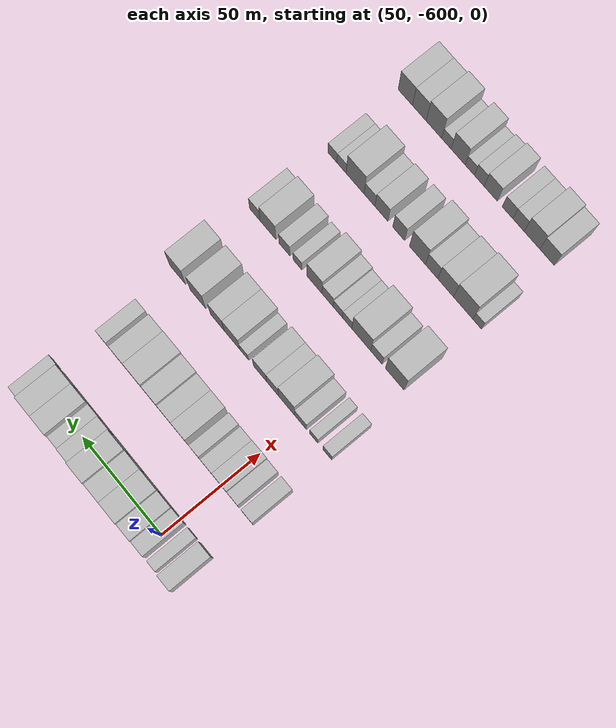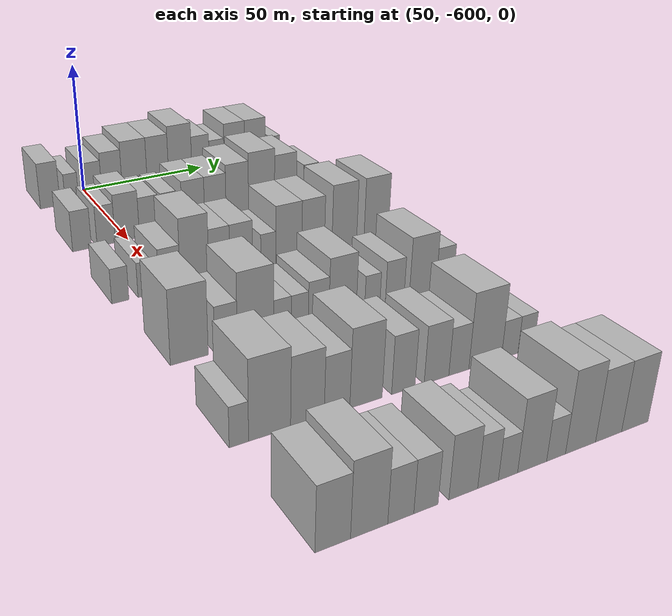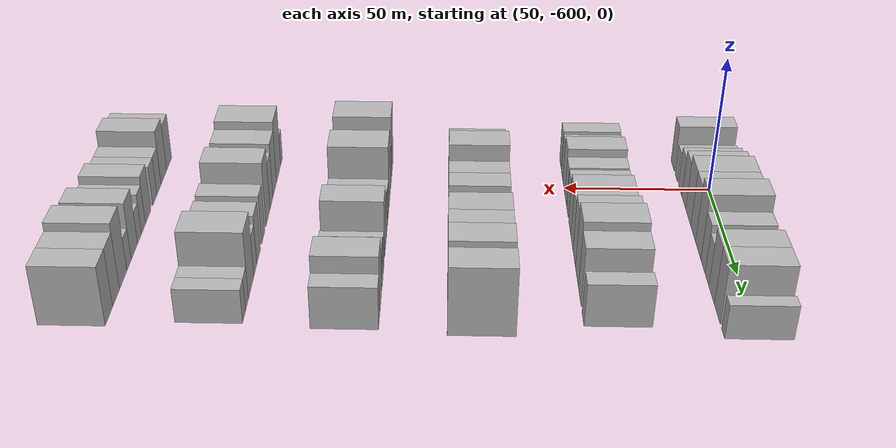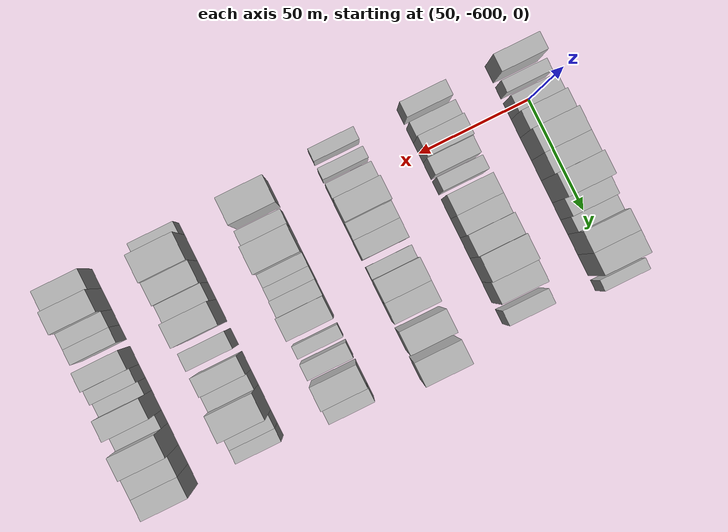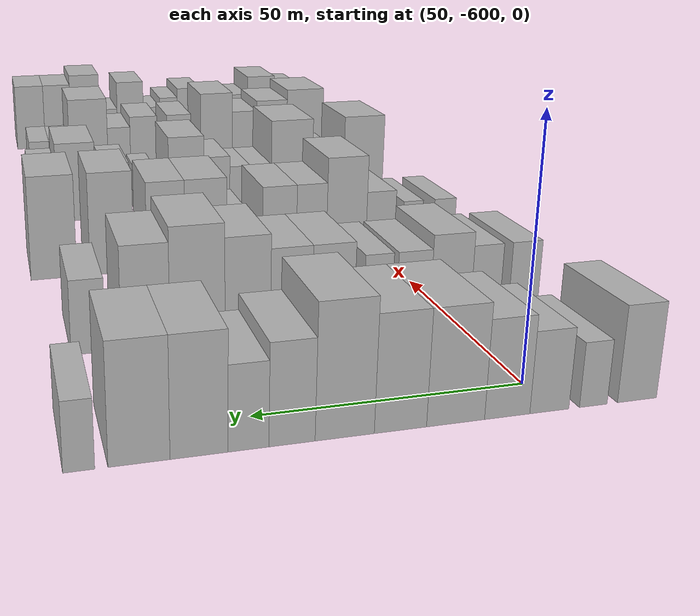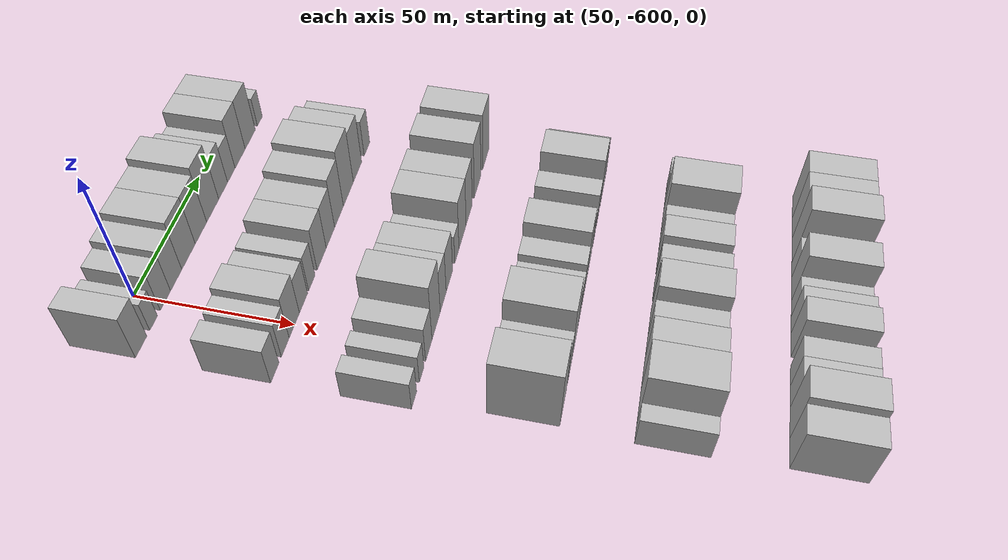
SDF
<sdf version="1.6">
 <world name="default">
  <model name="building_1">
   <static>1</static>
   <pose>50.0000 -616.2092 0 0.000000 0.000000 0.000000</pose>
   <link name="link">
    <pose>0 0 9.00 0 0 0</pose>
    <collision name="collision"><geometry><box><size>20.0000 7.5817 18.0000</size></box></geometry></collision>
    <visual name="visual">
     <cast_shadows>0</cast_shadows>
     <geometry><box><size>20.0000 7.5817 18.0000</size></box></geometry>
     <material>
      <script>
       <uri>model://HANNAS_wall/materials/scripts</uri>
       <uri>model://HANNAS_wall/materials/textures</uri>
       <name>vrc/HANNAS_wall</name>
      </script>
     </material>
    </visual>
   </link>
  </model>
  <model name="building_2">
   <static>1</static>
   <pose>50.0000 -607.7861 0 0.000000 0.000000 0.000000</pose>
   <link name="link">
    <pose>0 0 6.00 0 0 0</pose>
    <collision name="collision"><geometry><box><size>20.0000 5.2644 12.0000</size></box></geometry></collision>
    <visual name="visual">
     <cast_shadows>0</cast_shadows>
     <geometry><box><size>20.0000 5.2644 12.0000</size></box></geometry>
     <material>
      <script>
       <uri>model://HANNAS_wall/materials/scripts</uri>
       <uri>model://HANNAS_wall/materials/textures</uri>
       <name>vrc/HANNAS_wall</name>
      </script>
     </material>
    </visual>
   </link>
  </model>
  <model name="building_3">
   <static>1</static>
   <pose>50.0000 -599.5087 0 0.000000 0.000000 0.000000</pose>
   <link name="link">
    <pose>0 0 7.50 0 0 0</pose>
    <collision name="collision"><geometry><box><size>20.0000 7.2904 15.0000</size></box></geometry></collision>
    <visual name="visual">
     <cast_shadows>0</cast_shadows>
     <geometry><box><size>20.0000 7.2904 15.0000</size></box></geometry>
     <material>
      <script>
       <uri>model://HANNAS_wall/materials/scripts</uri>
       <uri>model://HANNAS_wall/materials/textures</uri>
       <name>vrc/HANNAS_wall</name>
      </script>
     </material>
    </visual>
   </link>
  </model>
  <model name="building_4">
   <static>1</static>
   <pose>50.0000 -591.7277 0 0.000000 0.000000 0.000000</pose>
   <link name="link">
    <pose>0 0 9.00 0 0 0</pose>
    <collision name="collision"><geometry><box><size>20.0000 8.2717 18.0000</size></box></geometry></collision>
    <visual name="visual">
     <cast_shadows>0</cast_shadows>
     <geometry><box><size>20.0000 8.2717 18.0000</size></box></geometry>
     <material>
      <script>
       <uri>model://HANNAS_wall/materials/scripts</uri>
       <uri>model://HANNAS_wall/materials/textures</uri>
       <name>vrc/HANNAS_wall</name>
      </script>
     </material>
    </visual>
   </link>
  </model>
  <model name="building_5">
   <static>1</static>
   <pose>50.0000 -582.4163 0 0.000000 0.000000 0.000000</pose>
   <link name="link">
    <pose>0 0 10.50 0 0 0</pose>
    <collision name="collision"><geometry><box><size>20.0000 10.3511 21.0000</size></box></geometry></collision>
    <visual name="visual">
     <cast_shadows>0</cast_shadows>
     <geometry><box><size>20.0000 10.3511 21.0000</size></box></geometry>
     <material>
      <script>
       <uri>model://HANNAS_wall/materials/scripts</uri>
       <uri>model://HANNAS_wall/materials/textures</uri>
       <name>vrc/HANNAS_wall</name>
      </script>
     </material>
    </visual>
   </link>
  </model>
  <model name="building_6">
   <static>1</static>
   <pose>50.0000 -572.6963 0 0.000000 0.000000 0.000000</pose>
   <link name="link">
    <pose>0 0 10.50 0 0 0</pose>
    <collision name="collision"><geometry><box><size>20.0000 9.0889 21.0000</size></box></geometry></collision>
    <visual name="visual">
     <cast_shadows>0</cast_shadows>
     <geometry><box><size>20.0000 9.0889 21.0000</size></box></geometry>
     <material>
      <script>
       <uri>model://HANNAS_wall/materials/scripts</uri>
       <uri>model://HANNAS_wall/materials/textures</uri>
       <name>vrc/HANNAS_wall</name>
      </script>
     </material>
    </visual>
   </link>
  </model>
  <model name="building_7">
   <static>1</static>
   <pose>50.0000 -563.1364 0 0.000000 0.000000 0.000000</pose>
   <link name="link">
    <pose>0 0 12.00 0 0 0</pose>
    <collision name="collision"><geometry><box><size>20.0000 10.0308 24.0000</size></box></geometry></collision>
    <visual name="visual">
     <cast_shadows>0</cast_shadows>
     <geometry><box><size>20.0000 10.0308 24.0000</size></box></geometry>
     <material>
      <script>
       <uri>model://HANNAS_wall/materials/scripts</uri>
       <uri>model://HANNAS_wall/materials/textures</uri>
       <name>vrc/HANNAS_wall</name>
      </script>
     </material>
    </visual>
   </link>
  </model>
  <model name="building_8">
   <static>1</static>
   <pose>50.0000 -554.2968 0 0.000000 0.000000 0.000000</pose>
   <link name="link">
    <pose>0 0 9.00 0 0 0</pose>
    <collision name="collision"><geometry><box><size>20.0000 7.6485 18.0000</size></box></geometry></collision>
    <visual name="visual">
     <cast_shadows>0</cast_shadows>
     <geometry><box><size>20.0000 7.6485 18.0000</size></box></geometry>
     <material>
      <script>
       <uri>model://HANNAS_wall/materials/scripts</uri>
       <uri>model://HANNAS_wall/materials/textures</uri>
       <name>vrc/HANNAS_wall</name>
      </script>
     </material>
    </visual>
   </link>
  </model>
  <model name="building_9">
   <static>1</static>
   <pose>50.0000 -547.1704 0 0.000000 0.000000 0.000000</pose>
   <link name="link">
    <pose>0 0 7.50 0 0 0</pose>
    <collision name="collision"><geometry><box><size>20.0000 6.6045 15.0000</size></box></geometry></collision>
    <visual name="visual">
     <cast_shadows>0</cast_shadows>
     <geometry><box><size>20.0000 6.6045 15.0000</size></box></geometry>
     <material>
      <script>
       <uri>model://HANNAS_wall/materials/scripts</uri>
       <uri>model://HANNAS_wall/materials/textures</uri>
       <name>vrc/HANNAS_wall</name>
      </script>
     </material>
    </visual>
   </link>
  </model>
  <model name="building_10">
   <static>1</static>
   <pose>50.0000 -539.2522 0 0.000000 0.000000 0.000000</pose>
   <link name="link">
    <pose>0 0 10.50 0 0 0</pose>
    <collision name="collision"><geometry><box><size>20.0000 9.2319 21.0000</size></box></geometry></collision>
    <visual name="visual">
     <cast_shadows>0</cast_shadows>
     <geometry><box><size>20.0000 9.2319 21.0000</size></box></geometry>
     <material>
      <script>
       <uri>model://HANNAS_wall/materials/scripts</uri>
       <uri>model://HANNAS_wall/materials/textures</uri>
       <name>vrc/HANNAS_wall</name>
      </script>
     </material>
    </visual>
   </link>
  </model>
  <model name="building_11">
   <static>1</static>
   <pose>50.0000 -529.8403 0 0.000000 0.000000 0.000000</pose>
   <link name="link">
    <pose>0 0 10.50 0 0 0</pose>
    <collision name="collision"><geometry><box><size>20.0000 9.5919 21.0000</size></box></geometry></collision>
    <visual name="visual">
     <cast_shadows>0</cast_shadows>
     <geometry><box><size>20.0000 9.5919 21.0000</size></box></geometry>
     <material>
      <script>
       <uri>model://HANNAS_wall/materials/scripts</uri>
       <uri>model://HANNAS_wall/materials/textures</uri>
       <name>vrc/HANNAS_wall</name>
      </script>
     </material>
    </visual>
   </link>
  </model>
  <model name="building_12">
   <static>1</static>
   <pose>50.0000 -520.6214 0 0.000000 0.000000 0.000000</pose>
   <link name="link">
    <pose>0 0 6.00 0 0 0</pose>
    <collision name="collision"><geometry><box><size>20.0000 4.8460 12.0000</size></box></geometry></collision>
    <visual name="visual">
     <cast_shadows>0</cast_shadows>
     <geometry><box><size>20.0000 4.8460 12.0000</size></box></geometry>
     <material>
      <script>
       <uri>model://HANNAS_wall/materials/scripts</uri>
       <uri>model://HANNAS_wall/materials/textures</uri>
       <name>vrc/HANNAS_wall</name>
      </script>
     </material>
    </visual>
   </link>
  </model>
  <model name="building_126">
   <static>1</static>
   <pose>90.0000 -616.6560 0 0.000000 0.000000 0.000000</pose>
   <link name="link">
    <pose>0 0 7.50 0 0 0</pose>
    <collision name="collision"><geometry><box><size>20.0000 6.6879 15.0000</size></box></geometry></collision>
    <visual name="visual">
     <cast_shadows>0</cast_shadows>
     <geometry><box><size>20.0000 6.6879 15.0000</size></box></geometry>
     <material>
      <script>
       <uri>model://HANNAS_wall/materials/scripts</uri>
       <uri>model://HANNAS_wall/materials/textures</uri>
       <name>vrc/HANNAS_wall</name>
      </script>
     </material>
    </visual>
   </link>
  </model>
  <model name="building_127">
   <static>1</static>
   <pose>90.0000 -608.0186 0 0.000000 0.000000 0.000000</pose>
   <link name="link">
    <pose>0 0 7.50 0 0 0</pose>
    <collision name="collision"><geometry><box><size>20.0000 6.5870 15.0000</size></box></geometry></collision>
    <visual name="visual">
     <cast_shadows>0</cast_shadows>
     <geometry><box><size>20.0000 6.5870 15.0000</size></box></geometry>
     <material>
      <script>
       <uri>model://HANNAS_wall/materials/scripts</uri>
       <uri>model://HANNAS_wall/materials/textures</uri>
       <name>vrc/HANNAS_wall</name>
      </script>
     </material>
    </visual>
   </link>
  </model>
  <model name="building_128">
   <static>1</static>
   <pose>90.0000 -600.2332 0 0.000000 0.000000 0.000000</pose>
   <link name="link">
    <pose>0 0 9.00 0 0 0</pose>
    <collision name="collision"><geometry><box><size>20.0000 8.9839 18.0000</size></box></geometry></collision>
    <visual name="visual">
     <cast_shadows>0</cast_shadows>
     <geometry><box><size>20.0000 8.9839 18.0000</size></box></geometry>
     <material>
      <script>
       <uri>model://HANNAS_wall/materials/scripts</uri>
       <uri>model://HANNAS_wall/materials/textures</uri>
       <name>vrc/HANNAS_wall</name>
      </script>
     </material>
    </visual>
   </link>
  </model>
  <model name="building_129">
   <static>1</static>
   <pose>90.0000 -592.0565 0 0.000000 0.000000 0.000000</pose>
   <link name="link">
    <pose>0 0 7.50 0 0 0</pose>
    <collision name="collision"><geometry><box><size>20.0000 7.3694 15.0000</size></box></geometry></collision>
    <visual name="visual">
     <cast_shadows>0</cast_shadows>
     <geometry><box><size>20.0000 7.3694 15.0000</size></box></geometry>
     <material>
      <script>
       <uri>model://HANNAS_wall/materials/scripts</uri>
       <uri>model://HANNAS_wall/materials/textures</uri>
       <name>vrc/HANNAS_wall</name>
      </script>
     </material>
    </visual>
   </link>
  </model>
  <model name="building_130">
   <static>1</static>
   <pose>90.0000 -584.3663 0 0.000000 0.000000 0.000000</pose>
   <link name="link">
    <pose>0 0 7.50 0 0 0</pose>
    <collision name="collision"><geometry><box><size>20.0000 6.0110 15.0000</size></box></geometry></collision>
    <visual name="visual">
     <cast_shadows>0</cast_shadows>
     <geometry><box><size>20.0000 6.0110 15.0000</size></box></geometry>
     <material>
      <script>
       <uri>model://HANNAS_wall/materials/scripts</uri>
       <uri>model://HANNAS_wall/materials/textures</uri>
       <name>vrc/HANNAS_wall</name>
      </script>
     </material>
    </visual>
   </link>
  </model>
  <model name="building_131">
   <static>1</static>
   <pose>90.0000 -574.9528 0 0.000000 0.000000 0.000000</pose>
   <link name="link">
    <pose>0 0 9.00 0 0 0</pose>
    <collision name="collision"><geometry><box><size>20.0000 8.8160 18.0000</size></box></geometry></collision>
    <visual name="visual">
     <cast_shadows>0</cast_shadows>
     <geometry><box><size>20.0000 8.8160 18.0000</size></box></geometry>
     <material>
      <script>
       <uri>model://HANNAS_wall/materials/scripts</uri>
       <uri>model://HANNAS_wall/materials/textures</uri>
       <name>vrc/HANNAS_wall</name>
      </script>
     </material>
    </visual>
   </link>
  </model>
  <model name="building_132">
   <static>1</static>
   <pose>90.0000 -566.2503 0 0.000000 0.000000 0.000000</pose>
   <link name="link">
    <pose>0 0 9.00 0 0 0</pose>
    <collision name="collision"><geometry><box><size>20.0000 8.5891 18.0000</size></box></geometry></collision>
    <visual name="visual">
     <cast_shadows>0</cast_shadows>
     <geometry><box><size>20.0000 8.5891 18.0000</size></box></geometry>
     <material>
      <script>
       <uri>model://HANNAS_wall/materials/scripts</uri>
       <uri>model://HANNAS_wall/materials/textures</uri>
       <name>vrc/HANNAS_wall</name>
      </script>
     </material>
    </visual>
   </link>
  </model>
  <model name="building_133">
   <static>1</static>
   <pose>90.0000 -557.3646 0 0.000000 0.000000 0.000000</pose>
   <link name="link">
    <pose>0 0 10.50 0 0 0</pose>
    <collision name="collision"><geometry><box><size>20.0000 9.1823 21.0000</size></box></geometry></collision>
    <visual name="visual">
     <cast_shadows>0</cast_shadows>
     <geometry><box><size>20.0000 9.1823 21.0000</size></box></geometry>
     <material>
      <script>
       <uri>model://HANNAS_wall/materials/scripts</uri>
       <uri>model://HANNAS_wall/materials/textures</uri>
       <name>vrc/HANNAS_wall</name>
      </script>
     </material>
    </visual>
   </link>
  </model>
  <model name="building_134">
   <static>1</static>
   <pose>90.0000 -547.3345 0 0.000000 0.000000 0.000000</pose>
   <link name="link">
    <pose>0 0 12.00 0 0 0</pose>
    <collision name="collision"><geometry><box><size>20.0000 10.8779 24.0000</size></box></geometry></collision>
    <visual name="visual">
     <cast_shadows>0</cast_shadows>
     <geometry><box><size>20.0000 10.8779 24.0000</size></box></geometry>
     <material>
      <script>
       <uri>model://HANNAS_wall/materials/scripts</uri>
       <uri>model://HANNAS_wall/materials/textures</uri>
       <name>vrc/HANNAS_wall</name>
      </script>
     </material>
    </visual>
   </link>
  </model>
  <model name="building_135">
   <static>1</static>
   <pose>90.0000 -537.1961 0 0.000000 0.000000 0.000000</pose>
   <link name="link">
    <pose>0 0 10.50 0 0 0</pose>
    <collision name="collision"><geometry><box><size>20.0000 9.3988 21.0000</size></box></geometry></collision>
    <visual name="visual">
     <cast_shadows>0</cast_shadows>
     <geometry><box><size>20.0000 9.3988 21.0000</size></box></geometry>
     <material>
      <script>
       <uri>model://HANNAS_wall/materials/scripts</uri>
       <uri>model://HANNAS_wall/materials/textures</uri>
       <name>vrc/HANNAS_wall</name>
      </script>
     </material>
    </visual>
   </link>
  </model>
  <model name="building_136">
   <static>1</static>
   <pose>90.0000 -526.2294 0 0.000000 0.000000 0.000000</pose>
   <link name="link">
    <pose>0 0 7.50 0 0 0</pose>
    <collision name="collision"><geometry><box><size>20.0000 6.5344 15.0000</size></box></geometry></collision>
    <visual name="visual">
     <cast_shadows>0</cast_shadows>
     <geometry><box><size>20.0000 6.5344 15.0000</size></box></geometry>
     <material>
      <script>
       <uri>model://HANNAS_wall/materials/scripts</uri>
       <uri>model://HANNAS_wall/materials/textures</uri>
       <name>vrc/HANNAS_wall</name>
      </script>
     </material>
    </visual>
   </link>
  </model>
  <model name="building_261">
   <static>1</static>
   <pose>130.0000 -617.2002 0 0.000000 0.000000 0.000000</pose>
   <link name="link">
    <pose>0 0 6.00 0 0 0</pose>
    <collision name="collision"><geometry><box><size>20.0000 5.5997 12.0000</size></box></geometry></collision>
    <visual name="visual">
     <cast_shadows>0</cast_shadows>
     <geometry><box><size>20.0000 5.5997 12.0000</size></box></geometry>
     <material>
      <script>
       <uri>model://HANNAS_wall/materials/scripts</uri>
       <uri>model://HANNAS_wall/materials/textures</uri>
       <name>vrc/HANNAS_wall</name>
      </script>
     </material>
    </visual>
   </link>
  </model>
  <model name="building_262">
   <static>1</static>
   <pose>130.0000 -608.8896 0 0.000000 0.000000 0.000000</pose>
   <link name="link">
    <pose>0 0 6.00 0 0 0</pose>
    <collision name="collision"><geometry><box><size>20.0000 5.0214 12.0000</size></box></geometry></collision>
    <visual name="visual">
     <cast_shadows>0</cast_shadows>
     <geometry><box><size>20.0000 5.0214 12.0000</size></box></geometry>
     <material>
      <script>
       <uri>model://HANNAS_wall/materials/scripts</uri>
       <uri>model://HANNAS_wall/materials/textures</uri>
       <name>vrc/HANNAS_wall</name>
      </script>
     </material>
    </visual>
   </link>
  </model>
  <model name="building_263">
   <static>1</static>
   <pose>130.0000 -600.6864 0 0.000000 0.000000 0.000000</pose>
   <link name="link">
    <pose>0 0 7.50 0 0 0</pose>
    <collision name="collision"><geometry><box><size>20.0000 7.3850 15.0000</size></box></geometry></collision>
    <visual name="visual">
     <cast_shadows>0</cast_shadows>
     <geometry><box><size>20.0000 7.3850 15.0000</size></box></geometry>
     <material>
      <script>
       <uri>model://HANNAS_wall/materials/scripts</uri>
       <uri>model://HANNAS_wall/materials/textures</uri>
       <name>vrc/HANNAS_wall</name>
      </script>
     </material>
    </visual>
   </link>
  </model>
  <model name="building_264">
   <static>1</static>
   <pose>130.0000 -591.9987 0 0.000000 0.000000 0.000000</pose>
   <link name="link">
    <pose>0 0 12.00 0 0 0</pose>
    <collision name="collision"><geometry><box><size>20.0000 9.9903 24.0000</size></box></geometry></collision>
    <visual name="visual">
     <cast_shadows>0</cast_shadows>
     <geometry><box><size>20.0000 9.9903 24.0000</size></box></geometry>
     <material>
      <script>
       <uri>model://HANNAS_wall/materials/scripts</uri>
       <uri>model://HANNAS_wall/materials/textures</uri>
       <name>vrc/HANNAS_wall</name>
      </script>
     </material>
    </visual>
   </link>
  </model>
  <model name="building_265">
   <static>1</static>
   <pose>130.0000 -583.2763 0 0.000000 0.000000 0.000000</pose>
   <link name="link">
    <pose>0 0 9.00 0 0 0</pose>
    <collision name="collision"><geometry><box><size>20.0000 7.4545 18.0000</size></box></geometry></collision>
    <visual name="visual">
     <cast_shadows>0</cast_shadows>
     <geometry><box><size>20.0000 7.4545 18.0000</size></box></geometry>
     <material>
      <script>
       <uri>model://HANNAS_wall/materials/scripts</uri>
       <uri>model://HANNAS_wall/materials/textures</uri>
       <name>vrc/HANNAS_wall</name>
      </script>
     </material>
    </visual>
   </link>
  </model>
  <model name="building_266">
   <static>1</static>
   <pose>130.0000 -575.3948 0 0.000000 0.000000 0.000000</pose>
   <link name="link">
    <pose>0 0 9.00 0 0 0</pose>
    <collision name="collision"><geometry><box><size>20.0000 8.3086 18.0000</size></box></geometry></collision>
    <visual name="visual">
     <cast_shadows>0</cast_shadows>
     <geometry><box><size>20.0000 8.3086 18.0000</size></box></geometry>
     <material>
      <script>
       <uri>model://HANNAS_wall/materials/scripts</uri>
       <uri>model://HANNAS_wall/materials/textures</uri>
       <name>vrc/HANNAS_wall</name>
      </script>
     </material>
    </visual>
   </link>
  </model>
  <model name="building_267">
   <static>1</static>
   <pose>130.0000 -565.4395 0 0.000000 0.000000 0.000000</pose>
   <link name="link">
    <pose>0 0 6.00 0 0 0</pose>
    <collision name="collision"><geometry><box><size>20.0000 5.6020 12.0000</size></box></geometry></collision>
    <visual name="visual">
     <cast_shadows>0</cast_shadows>
     <geometry><box><size>20.0000 5.6020 12.0000</size></box></geometry>
     <material>
      <script>
       <uri>model://HANNAS_wall/materials/scripts</uri>
       <uri>model://HANNAS_wall/materials/textures</uri>
       <name>vrc/HANNAS_wall</name>
      </script>
     </material>
    </visual>
   </link>
  </model>
  <model name="building_268">
   <static>1</static>
   <pose>130.0000 -557.6693 0 0.000000 0.000000 0.000000</pose>
   <link name="link">
    <pose>0 0 10.50 0 0 0</pose>
    <collision name="collision"><geometry><box><size>20.0000 9.9383 21.0000</size></box></geometry></collision>
    <visual name="visual">
     <cast_shadows>0</cast_shadows>
     <geometry><box><size>20.0000 9.9383 21.0000</size></box></geometry>
     <material>
      <script>
       <uri>model://HANNAS_wall/materials/scripts</uri>
       <uri>model://HANNAS_wall/materials/textures</uri>
       <name>vrc/HANNAS_wall</name>
      </script>
     </material>
    </visual>
   </link>
  </model>
  <model name="building_269">
   <static>1</static>
   <pose>130.0000 -548.2627 0 0.000000 0.000000 0.000000</pose>
   <link name="link">
    <pose>0 0 10.50 0 0 0</pose>
    <collision name="collision"><geometry><box><size>20.0000 8.8751 21.0000</size></box></geometry></collision>
    <visual name="visual">
     <cast_shadows>0</cast_shadows>
     <geometry><box><size>20.0000 8.8751 21.0000</size></box></geometry>
     <material>
      <script>
       <uri>model://HANNAS_wall/materials/scripts</uri>
       <uri>model://HANNAS_wall/materials/textures</uri>
       <name>vrc/HANNAS_wall</name>
      </script>
     </material>
    </visual>
   </link>
  </model>
  <model name="building_270">
   <static>1</static>
   <pose>130.0000 -535.8250 0 0.000000 0.000000 0.000000</pose>
   <link name="link">
    <pose>0 0 12.00 0 0 0</pose>
    <collision name="collision"><geometry><box><size>20.0000 10.0003 24.0000</size></box></geometry></collision>
    <visual name="visual">
     <cast_shadows>0</cast_shadows>
     <geometry><box><size>20.0000 10.0003 24.0000</size></box></geometry>
     <material>
      <script>
       <uri>model://HANNAS_wall/materials/scripts</uri>
       <uri>model://HANNAS_wall/materials/textures</uri>
       <name>vrc/HANNAS_wall</name>
      </script>
     </material>
    </visual>
   </link>
  </model>
  <model name="building_271">
   <static>1</static>
   <pose>130.0000 -522.7123 0 0.000000 0.000000 0.000000</pose>
   <link name="link">
    <pose>0 0 12.00 0 0 0</pose>
    <collision name="collision"><geometry><box><size>20.0000 10.2251 24.0000</size></box></geometry></collision>
    <visual name="visual">
     <cast_shadows>0</cast_shadows>
     <geometry><box><size>20.0000 10.2251 24.0000</size></box></geometry>
     <material>
      <script>
       <uri>model://HANNAS_wall/materials/scripts</uri>
       <uri>model://HANNAS_wall/materials/textures</uri>
       <name>vrc/HANNAS_wall</name>
      </script>
     </material>
    </visual>
   </link>
  </model>
  <model name="building_398">
   <static>1</static>
   <pose>170.0000 -611.2219 0 0.000000 0.000000 0.000000</pose>
   <link name="link">
    <pose>0 0 12.00 0 0 0</pose>
    <collision name="collision"><geometry><box><size>20.0000 11.5563 24.0000</size></box></geometry></collision>
    <visual name="visual">
     <cast_shadows>0</cast_shadows>
     <geometry><box><size>20.0000 11.5563 24.0000</size></box></geometry>
     <material>
      <script>
       <uri>model://HANNAS_wall/materials/scripts</uri>
       <uri>model://HANNAS_wall/materials/textures</uri>
       <name>vrc/HANNAS_wall</name>
      </script>
     </material>
    </visual>
   </link>
  </model>
  <model name="building_399">
   <static>1</static>
   <pose>170.0000 -599.8929 0 0.000000 0.000000 0.000000</pose>
   <link name="link">
    <pose>0 0 7.50 0 0 0</pose>
    <collision name="collision"><geometry><box><size>20.0000 7.1017 15.0000</size></box></geometry></collision>
    <visual name="visual">
     <cast_shadows>0</cast_shadows>
     <geometry><box><size>20.0000 7.1017 15.0000</size></box></geometry>
     <material>
      <script>
       <uri>model://HANNAS_wall/materials/scripts</uri>
       <uri>model://HANNAS_wall/materials/textures</uri>
       <name>vrc/HANNAS_wall</name>
      </script>
     </material>
    </visual>
   </link>
  </model>
  <model name="building_400">
   <static>1</static>
   <pose>170.0000 -590.4736 0 0.000000 0.000000 0.000000</pose>
   <link name="link">
    <pose>0 0 12.00 0 0 0</pose>
    <collision name="collision"><geometry><box><size>20.0000 11.7370 24.0000</size></box></geometry></collision>
    <visual name="visual">
     <cast_shadows>0</cast_shadows>
     <geometry><box><size>20.0000 11.7370 24.0000</size></box></geometry>
     <material>
      <script>
       <uri>model://HANNAS_wall/materials/scripts</uri>
       <uri>model://HANNAS_wall/materials/textures</uri>
       <name>vrc/HANNAS_wall</name>
      </script>
     </material>
    </visual>
   </link>
  </model>
  <model name="building_401">
   <static>1</static>
   <pose>170.0000 -581.6552 0 0.000000 0.000000 0.000000</pose>
   <link name="link">
    <pose>0 0 6.00 0 0 0</pose>
    <collision name="collision"><geometry><box><size>20.0000 5.8998 12.0000</size></box></geometry></collision>
    <visual name="visual">
     <cast_shadows>0</cast_shadows>
     <geometry><box><size>20.0000 5.8998 12.0000</size></box></geometry>
     <material>
      <script>
       <uri>model://HANNAS_wall/materials/scripts</uri>
       <uri>model://HANNAS_wall/materials/textures</uri>
       <name>vrc/HANNAS_wall</name>
      </script>
     </material>
    </visual>
   </link>
  </model>
  <model name="building_402">
   <static>1</static>
   <pose>170.0000 -575.8412 0 0.000000 0.000000 0.000000</pose>
   <link name="link">
    <pose>0 0 6.00 0 0 0</pose>
    <collision name="collision"><geometry><box><size>20.0000 5.7282 12.0000</size></box></geometry></collision>
    <visual name="visual">
     <cast_shadows>0</cast_shadows>
     <geometry><box><size>20.0000 5.7282 12.0000</size></box></geometry>
     <material>
      <script>
       <uri>model://HANNAS_wall/materials/scripts</uri>
       <uri>model://HANNAS_wall/materials/textures</uri>
       <name>vrc/HANNAS_wall</name>
      </script>
     </material>
    </visual>
   </link>
  </model>
  <model name="building_403">
   <static>1</static>
   <pose>170.0000 -569.4289 0 0.000000 0.000000 0.000000</pose>
   <link name="link">
    <pose>0 0 7.50 0 0 0</pose>
    <collision name="collision"><geometry><box><size>20.0000 7.0965 15.0000</size></box></geometry></collision>
    <visual name="visual">
     <cast_shadows>0</cast_shadows>
     <geometry><box><size>20.0000 7.0965 15.0000</size></box></geometry>
     <material>
      <script>
       <uri>model://HANNAS_wall/materials/scripts</uri>
       <uri>model://HANNAS_wall/materials/textures</uri>
       <name>vrc/HANNAS_wall</name>
      </script>
     </material>
    </visual>
   </link>
  </model>
  <model name="building_404">
   <static>1</static>
   <pose>170.0000 -561.0374 0 0.000000 0.000000 0.000000</pose>
   <link name="link">
    <pose>0 0 10.50 0 0 0</pose>
    <collision name="collision"><geometry><box><size>20.0000 9.6865 21.0000</size></box></geometry></collision>
    <visual name="visual">
     <cast_shadows>0</cast_shadows>
     <geometry><box><size>20.0000 9.6865 21.0000</size></box></geometry>
     <material>
      <script>
       <uri>model://HANNAS_wall/materials/scripts</uri>
       <uri>model://HANNAS_wall/materials/textures</uri>
       <name>vrc/HANNAS_wall</name>
      </script>
     </material>
    </visual>
   </link>
  </model>
  <model name="building_405">
   <static>1</static>
   <pose>170.0000 -550.4196 0 0.000000 0.000000 0.000000</pose>
   <link name="link">
    <pose>0 0 6.00 0 0 0</pose>
    <collision name="collision"><geometry><box><size>20.0000 5.5492 12.0000</size></box></geometry></collision>
    <visual name="visual">
     <cast_shadows>0</cast_shadows>
     <geometry><box><size>20.0000 5.5492 12.0000</size></box></geometry>
     <material>
      <script>
       <uri>model://HANNAS_wall/materials/scripts</uri>
       <uri>model://HANNAS_wall/materials/textures</uri>
       <name>vrc/HANNAS_wall</name>
      </script>
     </material>
    </visual>
   </link>
  </model>
  <model name="building_406">
   <static>1</static>
   <pose>170.0000 -542.1634 0 0.000000 0.000000 0.000000</pose>
   <link name="link">
    <pose>0 0 7.50 0 0 0</pose>
    <collision name="collision"><geometry><box><size>20.0000 6.9631 15.0000</size></box></geometry></collision>
    <visual name="visual">
     <cast_shadows>0</cast_shadows>
     <geometry><box><size>20.0000 6.9631 15.0000</size></box></geometry>
     <material>
      <script>
       <uri>model://HANNAS_wall/materials/scripts</uri>
       <uri>model://HANNAS_wall/materials/textures</uri>
       <name>vrc/HANNAS_wall</name>
      </script>
     </material>
    </visual>
   </link>
  </model>
  <model name="building_407">
   <static>1</static>
   <pose>170.0000 -531.5917 0 0.000000 0.000000 0.000000</pose>
   <link name="link">
    <pose>0 0 10.50 0 0 0</pose>
    <collision name="collision"><geometry><box><size>20.0000 10.1802 21.0000</size></box></geometry></collision>
    <visual name="visual">
     <cast_shadows>0</cast_shadows>
     <geometry><box><size>20.0000 10.1802 21.0000</size></box></geometry>
     <material>
      <script>
       <uri>model://HANNAS_wall/materials/scripts</uri>
       <uri>model://HANNAS_wall/materials/textures</uri>
       <name>vrc/HANNAS_wall</name>
      </script>
     </material>
    </visual>
   </link>
  </model>
  <model name="building_408">
   <static>1</static>
   <pose>170.0000 -523.1170 0 0.000000 0.000000 0.000000</pose>
   <link name="link">
    <pose>0 0 7.50 0 0 0</pose>
    <collision name="collision"><geometry><box><size>20.0000 6.7692 15.0000</size></box></geometry></collision>
    <visual name="visual">
     <cast_shadows>0</cast_shadows>
     <geometry><box><size>20.0000 6.7692 15.0000</size></box></geometry>
     <material>
      <script>
       <uri>model://HANNAS_wall/materials/scripts</uri>
       <uri>model://HANNAS_wall/materials/textures</uri>
       <name>vrc/HANNAS_wall</name>
      </script>
     </material>
    </visual>
   </link>
  </model>
  <model name="building_540">
   <static>1</static>
   <pose>210.0000 -615.3526 0 0.000000 0.000000 0.000000</pose>
   <link name="link">
    <pose>0 0 6.00 0 0 0</pose>
    <collision name="collision"><geometry><box><size>20.0000 5.2949 12.0000</size></box></geometry></collision>
    <visual name="visual">
     <cast_shadows>0</cast_shadows>
     <geometry><box><size>20.0000 5.2949 12.0000</size></box></geometry>
     <material>
      <script>
       <uri>model://HANNAS_wall/materials/scripts</uri>
       <uri>model://HANNAS_wall/materials/textures</uri>
       <name>vrc/HANNAS_wall</name>
      </script>
     </material>
    </visual>
   </link>
  </model>
  <model name="building_541">
   <static>1</static>
   <pose>210.0000 -606.7987 0 0.000000 0.000000 0.000000</pose>
   <link name="link">
    <pose>0 0 12.00 0 0 0</pose>
    <collision name="collision"><geometry><box><size>20.0000 11.8129 24.0000</size></box></geometry></collision>
    <visual name="visual">
     <cast_shadows>0</cast_shadows>
     <geometry><box><size>20.0000 11.8129 24.0000</size></box></geometry>
     <material>
      <script>
       <uri>model://HANNAS_wall/materials/scripts</uri>
       <uri>model://HANNAS_wall/materials/textures</uri>
       <name>vrc/HANNAS_wall</name>
      </script>
     </material>
    </visual>
   </link>
  </model>
  <model name="building_542">
   <static>1</static>
   <pose>210.0000 -595.9893 0 0.000000 0.000000 0.000000</pose>
   <link name="link">
    <pose>0 0 10.50 0 0 0</pose>
    <collision name="collision"><geometry><box><size>20.0000 9.8058 21.0000</size></box></geometry></collision>
    <visual name="visual">
     <cast_shadows>0</cast_shadows>
     <geometry><box><size>20.0000 9.8058 21.0000</size></box></geometry>
     <material>
      <script>
       <uri>model://HANNAS_wall/materials/scripts</uri>
       <uri>model://HANNAS_wall/materials/textures</uri>
       <name>vrc/HANNAS_wall</name>
      </script>
     </material>
    </visual>
   </link>
  </model>
  <model name="building_543">
   <static>1</static>
   <pose>210.0000 -587.2452 0 0.000000 0.000000 0.000000</pose>
   <link name="link">
    <pose>0 0 9.00 0 0 0</pose>
    <collision name="collision"><geometry><box><size>20.0000 7.6826 18.0000</size></box></geometry></collision>
    <visual name="visual">
     <cast_shadows>0</cast_shadows>
     <geometry><box><size>20.0000 7.6826 18.0000</size></box></geometry>
     <material>
      <script>
       <uri>model://HANNAS_wall/materials/scripts</uri>
       <uri>model://HANNAS_wall/materials/textures</uri>
       <name>vrc/HANNAS_wall</name>
      </script>
     </material>
    </visual>
   </link>
  </model>
  <model name="building_544">
   <static>1</static>
   <pose>210.0000 -578.3949 0 0.000000 0.000000 0.000000</pose>
   <link name="link">
    <pose>0 0 12.00 0 0 0</pose>
    <collision name="collision"><geometry><box><size>20.0000 10.0179 24.0000</size></box></geometry></collision>
    <visual name="visual">
     <cast_shadows>0</cast_shadows>
     <geometry><box><size>20.0000 10.0179 24.0000</size></box></geometry>
     <material>
      <script>
       <uri>model://HANNAS_wall/materials/scripts</uri>
       <uri>model://HANNAS_wall/materials/textures</uri>
       <name>vrc/HANNAS_wall</name>
      </script>
     </material>
    </visual>
   </link>
  </model>
  <model name="building_545">
   <static>1</static>
   <pose>210.0000 -566.6279 0 0.000000 0.000000 0.000000</pose>
   <link name="link">
    <pose>0 0 9.00 0 0 0</pose>
    <collision name="collision"><geometry><box><size>20.0000 7.5161 18.0000</size></box></geometry></collision>
    <visual name="visual">
     <cast_shadows>0</cast_shadows>
     <geometry><box><size>20.0000 7.5161 18.0000</size></box></geometry>
     <material>
      <script>
       <uri>model://HANNAS_wall/materials/scripts</uri>
       <uri>model://HANNAS_wall/materials/textures</uri>
       <name>vrc/HANNAS_wall</name>
      </script>
     </material>
    </visual>
   </link>
  </model>
  <model name="building_546">
   <static>1</static>
   <pose>210.0000 -555.7561 0 0.000000 0.000000 0.000000</pose>
   <link name="link">
    <pose>0 0 9.00 0 0 0</pose>
    <collision name="collision"><geometry><box><size>20.0000 8.2277 18.0000</size></box></geometry></collision>
    <visual name="visual">
     <cast_shadows>0</cast_shadows>
     <geometry><box><size>20.0000 8.2277 18.0000</size></box></geometry>
     <material>
      <script>
       <uri>model://HANNAS_wall/materials/scripts</uri>
       <uri>model://HANNAS_wall/materials/textures</uri>
       <name>vrc/HANNAS_wall</name>
      </script>
     </material>
    </visual>
   </link>
  </model>
  <model name="building_547">
   <static>1</static>
   <pose>210.0000 -548.2301 0 0.000000 0.000000 0.000000</pose>
   <link name="link">
    <pose>0 0 7.50 0 0 0</pose>
    <collision name="collision"><geometry><box><size>20.0000 6.8242 15.0000</size></box></geometry></collision>
    <visual name="visual">
     <cast_shadows>0</cast_shadows>
     <geometry><box><size>20.0000 6.8242 15.0000</size></box></geometry>
     <material>
      <script>
       <uri>model://HANNAS_wall/materials/scripts</uri>
       <uri>model://HANNAS_wall/materials/textures</uri>
       <name>vrc/HANNAS_wall</name>
      </script>
     </material>
    </visual>
   </link>
  </model>
  <model name="building_548">
   <static>1</static>
   <pose>210.0000 -539.0974 0 0.000000 0.000000 0.000000</pose>
   <link name="link">
    <pose>0 0 12.00 0 0 0</pose>
    <collision name="collision"><geometry><box><size>20.0000 11.4411 24.0000</size></box></geometry></collision>
    <visual name="visual">
     <cast_shadows>0</cast_shadows>
     <geometry><box><size>20.0000 11.4411 24.0000</size></box></geometry>
     <material>
      <script>
       <uri>model://HANNAS_wall/materials/scripts</uri>
       <uri>model://HANNAS_wall/materials/textures</uri>
       <name>vrc/HANNAS_wall</name>
      </script>
     </material>
    </visual>
   </link>
  </model>
  <model name="building_549">
   <static>1</static>
   <pose>210.0000 -530.3914 0 0.000000 0.000000 0.000000</pose>
   <link name="link">
    <pose>0 0 6.00 0 0 0</pose>
    <collision name="collision"><geometry><box><size>20.0000 5.9710 12.0000</size></box></geometry></collision>
    <visual name="visual">
     <cast_shadows>0</cast_shadows>
     <geometry><box><size>20.0000 5.9710 12.0000</size></box></geometry>
     <material>
      <script>
       <uri>model://HANNAS_wall/materials/scripts</uri>
       <uri>model://HANNAS_wall/materials/textures</uri>
       <name>vrc/HANNAS_wall</name>
      </script>
     </material>
    </visual>
   </link>
  </model>
  <model name="building_550">
   <static>1</static>
   <pose>210.0000 -524.4994 0 0.000000 0.000000 0.000000</pose>
   <link name="link">
    <pose>0 0 6.00 0 0 0</pose>
    <collision name="collision"><geometry><box><size>20.0000 5.8131 12.0000</size></box></geometry></collision>
    <visual name="visual">
     <cast_shadows>0</cast_shadows>
     <geometry><box><size>20.0000 5.8131 12.0000</size></box></geometry>
     <material>
      <script>
       <uri>model://HANNAS_wall/materials/scripts</uri>
       <uri>model://HANNAS_wall/materials/textures</uri>
       <name>vrc/HANNAS_wall</name>
      </script>
     </material>
    </visual>
   </link>
  </model>
  <model name="building_678">
   <static>1</static>
   <pose>250.0000 -612.5660 0 0.000000 0.000000 0.000000</pose>
   <link name="link">
    <pose>0 0 9.00 0 0 0</pose>
    <collision name="collision"><geometry><box><size>20.0000 8.8681 18.0000</size></box></geometry></collision>
    <visual name="visual">
     <cast_shadows>0</cast_shadows>
     <geometry><box><size>20.0000 8.8681 18.0000</size></box></geometry>
     <material>
      <script>
       <uri>model://HANNAS_wall/materials/scripts</uri>
       <uri>model://HANNAS_wall/materials/textures</uri>
       <name>vrc/HANNAS_wall</name>
      </script>
     </material>
    </visual>
   </link>
  </model>
  <model name="building_679">
   <static>1</static>
   <pose>250.0000 -603.3233 0 0.000000 0.000000 0.000000</pose>
   <link name="link">
    <pose>0 0 10.50 0 0 0</pose>
    <collision name="collision"><geometry><box><size>20.0000 9.6173 21.0000</size></box></geometry></collision>
    <visual name="visual">
     <cast_shadows>0</cast_shadows>
     <geometry><box><size>20.0000 9.6173 21.0000</size></box></geometry>
     <material>
      <script>
       <uri>model://HANNAS_wall/materials/scripts</uri>
       <uri>model://HANNAS_wall/materials/textures</uri>
       <name>vrc/HANNAS_wall</name>
      </script>
     </material>
    </visual>
   </link>
  </model>
  <model name="building_680">
   <static>1</static>
   <pose>250.0000 -595.0401 0 0.000000 0.000000 0.000000</pose>
   <link name="link">
    <pose>0 0 7.50 0 0 0</pose>
    <collision name="collision"><geometry><box><size>20.0000 6.9489 15.0000</size></box></geometry></collision>
    <visual name="visual">
     <cast_shadows>0</cast_shadows>
     <geometry><box><size>20.0000 6.9489 15.0000</size></box></geometry>
     <material>
      <script>
       <uri>model://HANNAS_wall/materials/scripts</uri>
       <uri>model://HANNAS_wall/materials/textures</uri>
       <name>vrc/HANNAS_wall</name>
      </script>
     </material>
    </visual>
   </link>
  </model>
  <model name="building_681">
   <static>1</static>
   <pose>250.0000 -588.2396 0 0.000000 0.000000 0.000000</pose>
   <link name="link">
    <pose>0 0 7.50 0 0 0</pose>
    <collision name="collision"><geometry><box><size>20.0000 6.6521 15.0000</size></box></geometry></collision>
    <visual name="visual">
     <cast_shadows>0</cast_shadows>
     <geometry><box><size>20.0000 6.6521 15.0000</size></box></geometry>
     <material>
      <script>
       <uri>model://HANNAS_wall/materials/scripts</uri>
       <uri>model://HANNAS_wall/materials/textures</uri>
       <name>vrc/HANNAS_wall</name>
      </script>
     </material>
    </visual>
   </link>
  </model>
  <model name="building_682">
   <static>1</static>
   <pose>250.0000 -577.7964 0 0.000000 0.000000 0.000000</pose>
   <link name="link">
    <pose>0 0 9.00 0 0 0</pose>
    <collision name="collision"><geometry><box><size>20.0000 8.2343 18.0000</size></box></geometry></collision>
    <visual name="visual">
     <cast_shadows>0</cast_shadows>
     <geometry><box><size>20.0000 8.2343 18.0000</size></box></geometry>
     <material>
      <script>
       <uri>model://HANNAS_wall/materials/scripts</uri>
       <uri>model://HANNAS_wall/materials/textures</uri>
       <name>vrc/HANNAS_wall</name>
      </script>
     </material>
    </visual>
   </link>
  </model>
  <model name="building_683">
   <static>1</static>
   <pose>250.0000 -570.6433 0 0.000000 0.000000 0.000000</pose>
   <link name="link">
    <pose>0 0 7.50 0 0 0</pose>
    <collision name="collision"><geometry><box><size>20.0000 6.0718 15.0000</size></box></geometry></collision>
    <visual name="visual">
     <cast_shadows>0</cast_shadows>
     <geometry><box><size>20.0000 6.0718 15.0000</size></box></geometry>
     <material>
      <script>
       <uri>model://HANNAS_wall/materials/scripts</uri>
       <uri>model://HANNAS_wall/materials/textures</uri>
       <name>vrc/HANNAS_wall</name>
      </script>
     </material>
    </visual>
   </link>
  </model>
  <model name="building_684">
   <static>1</static>
   <pose>250.0000 -564.7393 0 0.000000 0.000000 0.000000</pose>
   <link name="link">
    <pose>0 0 6.00 0 0 0</pose>
    <collision name="collision"><geometry><box><size>20.0000 5.7362 12.0000</size></box></geometry></collision>
    <visual name="visual">
     <cast_shadows>0</cast_shadows>
     <geometry><box><size>20.0000 5.7362 12.0000</size></box></geometry>
     <material>
      <script>
       <uri>model://HANNAS_wall/materials/scripts</uri>
       <uri>model://HANNAS_wall/materials/textures</uri>
       <name>vrc/HANNAS_wall</name>
      </script>
     </material>
    </visual>
   </link>
  </model>
  <model name="building_685">
   <static>1</static>
   <pose>250.0000 -557.4053 0 0.000000 0.000000 0.000000</pose>
   <link name="link">
    <pose>0 0 10.50 0 0 0</pose>
    <collision name="collision"><geometry><box><size>20.0000 8.9320 21.0000</size></box></geometry></collision>
    <visual name="visual">
     <cast_shadows>0</cast_shadows>
     <geometry><box><size>20.0000 8.9320 21.0000</size></box></geometry>
     <material>
      <script>
       <uri>model://HANNAS_wall/materials/scripts</uri>
       <uri>model://HANNAS_wall/materials/textures</uri>
       <name>vrc/HANNAS_wall</name>
      </script>
     </material>
    </visual>
   </link>
  </model>
  <model name="building_686">
   <static>1</static>
   <pose>250.0000 -549.9623 0 0.000000 0.000000 0.000000</pose>
   <link name="link">
    <pose>0 0 6.00 0 0 0</pose>
    <collision name="collision"><geometry><box><size>20.0000 5.9540 12.0000</size></box></geometry></collision>
    <visual name="visual">
     <cast_shadows>0</cast_shadows>
     <geometry><box><size>20.0000 5.9540 12.0000</size></box></geometry>
     <material>
      <script>
       <uri>model://HANNAS_wall/materials/scripts</uri>
       <uri>model://HANNAS_wall/materials/textures</uri>
       <name>vrc/HANNAS_wall</name>
      </script>
     </material>
    </visual>
   </link>
  </model>
  <model name="building_687">
   <static>1</static>
   <pose>250.0000 -542.1010 0 0.000000 0.000000 0.000000</pose>
   <link name="link">
    <pose>0 0 12.00 0 0 0</pose>
    <collision name="collision"><geometry><box><size>20.0000 9.7687 24.0000</size></box></geometry></collision>
    <visual name="visual">
     <cast_shadows>0</cast_shadows>
     <geometry><box><size>20.0000 9.7687 24.0000</size></box></geometry>
     <material>
      <script>
       <uri>model://HANNAS_wall/materials/scripts</uri>
       <uri>model://HANNAS_wall/materials/textures</uri>
       <name>vrc/HANNAS_wall</name>
      </script>
     </material>
    </visual>
   </link>
  </model>
  <model name="building_688">
   <static>1</static>
   <pose>250.0000 -532.8435 0 0.000000 0.000000 0.000000</pose>
   <link name="link">
    <pose>0 0 10.50 0 0 0</pose>
    <collision name="collision"><geometry><box><size>20.0000 8.7463 21.0000</size></box></geometry></collision>
    <visual name="visual">
     <cast_shadows>0</cast_shadows>
     <geometry><box><size>20.0000 8.7463 21.0000</size></box></geometry>
     <material>
      <script>
       <uri>model://HANNAS_wall/materials/scripts</uri>
       <uri>model://HANNAS_wall/materials/textures</uri>
       <name>vrc/HANNAS_wall</name>
      </script>
     </material>
    </visual>
   </link>
  </model>
  <model name="building_689">
   <static>1</static>
   <pose>250.0000 -523.8982 0 0.000000 0.000000 0.000000</pose>
   <link name="link">
    <pose>0 0 10.50 0 0 0</pose>
    <collision name="collision"><geometry><box><size>20.0000 9.1442 21.0000</size></box></geometry></collision>
    <visual name="visual">
     <cast_shadows>0</cast_shadows>
     <geometry><box><size>20.0000 9.1442 21.0000</size></box></geometry>
     <material>
      <script>
       <uri>model://HANNAS_wall/materials/scripts</uri>
       <uri>model://HANNAS_wall/materials/textures</uri>
       <name>vrc/HANNAS_wall</name>
      </script>
     </material>
    </visual>
   </link>
  </model>
 </world>
</sdf>
